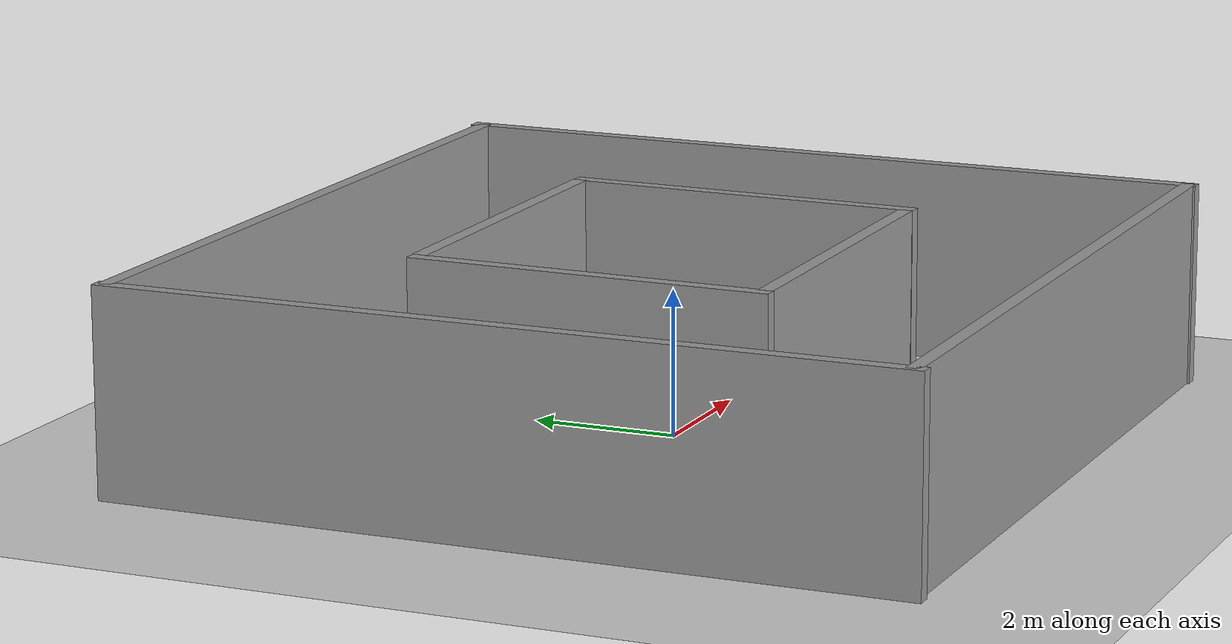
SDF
<sdf version="1.6">
 <world name="default">
  <light name="sun" type="directional">
   <pose>0 0 10 0 -0 0</pose>
   <diffuse>0.8 0.8 0.8 1</diffuse>
   <specular>0.1 0.1 0.1 1</specular>
   <attenuation>
    <range>1000</range>
    <constant>0.9</constant>
    <linear>0.01</linear>
    <quadratic>0.001</quadratic>
   </attenuation>
   <direction>-0.5 0.5 -1</direction>
  </light>
  <plugin name="ros_interface_plugin" filename="librotors_gazebo_ros_interface_plugin.so"/>
  <model name="ground_plane">
   <static>1</static>
   <link name="link">
    <collision name="collision">
     <geometry><plane><normal>0 0 1</normal><size>100 100</size></plane></geometry>
     <surface><friction><ode><mu>100</mu><mu2>50</mu2></ode></friction></surface>
    </collision>
    <visual name="visual">
     <cast_shadows>0</cast_shadows>
     <geometry><plane><normal>0 0 1</normal><size>100 100</size></plane></geometry>
     <material>
      <script><uri>file://media/materials/scripts/gazebo.material</uri><name>Gazebo/Grey</name></script>
     </material>
    </visual>
   </link>
  </model>
  <gravity>0 0 -9.8</gravity>
  <magnetic_field>6e-06 2.3e-05 -4.2e-05</magnetic_field>
  <atmosphere type="adiabatic"/>
  <physics type="ode">
   <ode>
    <solver><type>quick</type><iters>1000</iters><sor>1.3</sor></solver>
    <constraints>
     <cfm>0</cfm>
     <erp>0.2</erp>
     <contact_max_correcting_vel>100</contact_max_correcting_vel>
     <contact_surface_layer>0.001</contact_surface_layer>
    </constraints>
   </ode>
   <max_step_size>0.01</max_step_size>
   <real_time_factor>1</real_time_factor>
   <real_time_update_rate>100</real_time_update_rate>
   <gravity>0 0 -9.8</gravity>
  </physics>
  <scene><ambient>0.4 0.4 0.4 1</ambient><background>0.7 0.7 0.7 1</background><shadows>1</shadows></scene>
  <spherical_coordinates>
   <surface_model>EARTH_WGS84</surface_model>
   <latitude_deg>47.3667</latitude_deg>
   <longitude_deg>8.5500</longitude_deg>
   <elevation>500.0</elevation>
   <heading_deg>0</heading_deg>
  </spherical_coordinates>
  <model name="grey_wall">
   <static>1</static>
   <link name="link">
    <pose>0 0 1.4 0 -0 0</pose>
    <collision name="collision"><geometry><box><size>5 0.2 2.8</size></box></geometry></collision>
    <visual name="visual">
     <cast_shadows>0</cast_shadows>
     <geometry><box><size>5 0.2 2.8</size></box></geometry>
     <material>
      <script>
       <uri>model://grey_wall/materials/scripts</uri>
       <uri>model://grey_wall/materials/textures</uri>
       <name>vrc/grey_wall3</name>
      </script>
     </material>
    </visual>
   </link>
   <pose>-0.087372 2.43103 0 0 -0 0</pose>
  </model>
  <model name="grey_wall_0">
   <static>1</static>
   <link name="link">
    <pose>0 0 1.4 0 -0 0</pose>
    <collision name="collision"><geometry><box><size>5 0.2 2.8</size></box></geometry></collision>
    <visual name="visual">
     <cast_shadows>0</cast_shadows>
     <geometry><box><size>5 0.2 2.8</size></box></geometry>
     <material>
      <script>
       <uri>model://grey_wall/materials/scripts</uri>
       <uri>model://grey_wall/materials/textures</uri>
       <name>vrc/grey_wall8</name>
      </script>
     </material>
    </visual>
   </link>
   <pose>-0.14356 -2.37727 0 0 -0 0</pose>
  </model>
  <model name="grey_wall_1">
   <static>1</static>
   <link name="link">
    <pose>0 0 1.4 0 -0 0</pose>
    <collision name="collision"><geometry><box><size>5 0.2 2.8</size></box></geometry></collision>
    <visual name="visual">
     <cast_shadows>0</cast_shadows>
     <geometry><box><size>5 0.2 2.8</size></box></geometry>
     <material>
      <script>
       <uri>model://grey_wall/materials/scripts</uri>
       <uri>model://grey_wall/materials/textures</uri>
       <name>vrc/grey_wall5</name>
      </script>
     </material>
    </visual>
   </link>
   <pose>-2.69719 0.018055 0 0 0 -1.57913</pose>
  </model>
  <model name="grey_wall_2">
   <static>1</static>
   <link name="link">
    <pose>0 0 1.4 0 -0 0</pose>
    <collision name="collision"><geometry><box><size>5 0.2 2.8</size></box></geometry></collision>
    <visual name="visual">
     <cast_shadows>0</cast_shadows>
     <geometry><box><size>5 0.2 2.8</size></box></geometry>
     <material>
      <script>
       <uri>model://grey_wall/materials/scripts</uri>
       <uri>model://grey_wall/materials/textures</uri>
       <name>vrc/grey_wall7</name>
      </script>
     </material>
    </visual>
   </link>
   <pose>2.45623 0.016314 0 0 -0 1.56388</pose>
  </model>
  <model name="grey_wall_3">
   <static>1</static>
   <link name="link">
    <pose>0 0 1.4 0 -0 0</pose>
    <collision name="collision"><geometry><box><size>11 0.2 2.8</size></box></geometry></collision>
    <visual name="visual">
     <cast_shadows>0</cast_shadows>
     <geometry><box><size>11 0.2 2.8</size></box></geometry>
     <material>
      <script>
       <uri>model://grey_wall/materials/scripts</uri>
       <uri>model://grey_wall/materials/textures</uri>
       <name>vrc/grey_wall11</name>
      </script>
     </material>
    </visual>
   </link>
   <pose>-0.078365 5.32103 0 0 -0 0</pose>
  </model>
  <model name="grey_wall_4">
   <static>1</static>
   <link name="link">
    <pose>0 0 1.4 0 -0 0</pose>
    <collision name="collision"><geometry><box><size>11 0.2 2.8</size></box></geometry></collision>
    <visual name="visual">
     <cast_shadows>0</cast_shadows>
     <geometry><box><size>11 0.2 2.8</size></box></geometry>
     <material>
      <script>
       <uri>model://grey_wall/materials/scripts</uri>
       <uri>model://grey_wall/materials/textures</uri>
       <name>vrc/grey_wall6</name>
      </script>
     </material>
    </visual>
   </link>
   <pose>-0.038029 -5.38136 0 0 -0 0</pose>
  </model>
  <model name="grey_wall_5">
   <static>1</static>
   <link name="link">
    <pose>0 0 1.4 0 -0 0</pose>
    <collision name="collision"><geometry><box><size>11 0.2 2.8</size></box></geometry></collision>
    <visual name="visual">
     <cast_shadows>0</cast_shadows>
     <geometry><box><size>11 0.2 2.8</size></box></geometry>
     <material>
      <script>
       <uri>model://grey_wall/materials/scripts</uri>
       <uri>model://grey_wall/materials/textures</uri>
       <name>vrc/grey_wall12</name>
      </script>
     </material>
    </visual>
   </link>
   <pose>-5.53506 -0.043841 0 0 0 -1.56531</pose>
  </model>
  <model name="grey_wall_6">
   <static>1</static>
   <link name="link">
    <pose>0 0 1.4 0 -0 0</pose>
    <collision name="collision"><geometry><box><size>11 0.2 2.8</size></box></geometry></collision>
    <visual name="visual">
     <cast_shadows>0</cast_shadows>
     <geometry><box><size>11 0.2 2.8</size></box></geometry>
     <material>
      <script>
       <uri>model://grey_wall/materials/scripts</uri>
       <uri>model://grey_wall/materials/textures</uri>
       <name>vrc/grey_wall13</name>
      </script>
     </material>
    </visual>
   </link>
   <pose>5.40588 -0.011399 0 0 0 -1.5687</pose>
  </model>
 </world>
</sdf>
